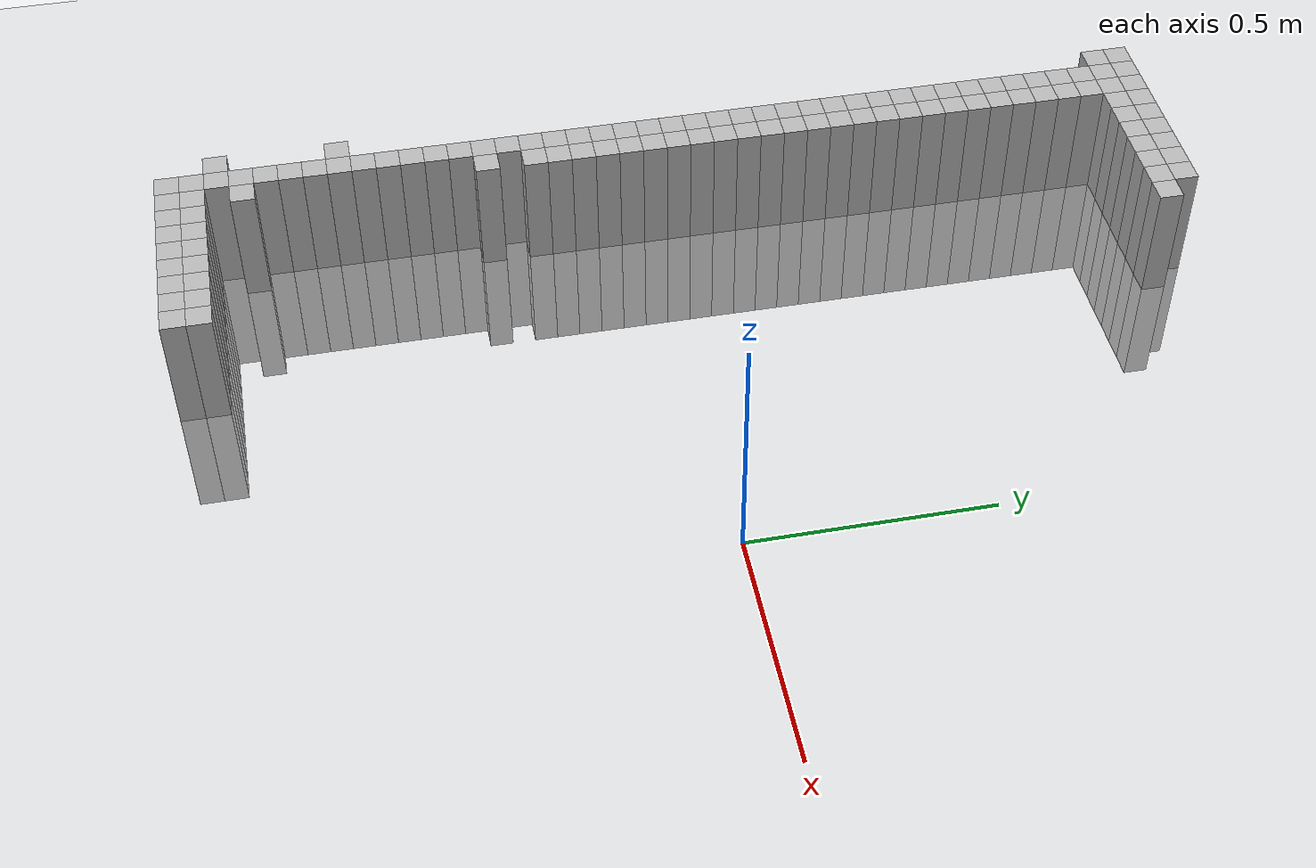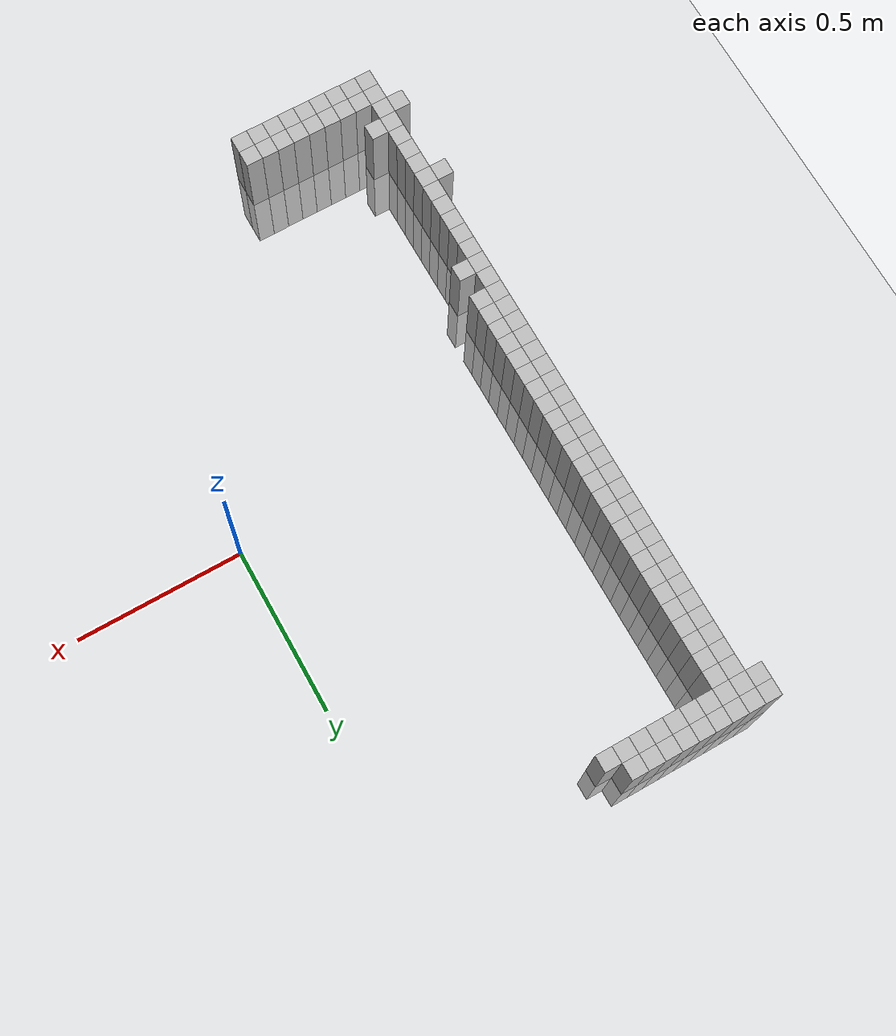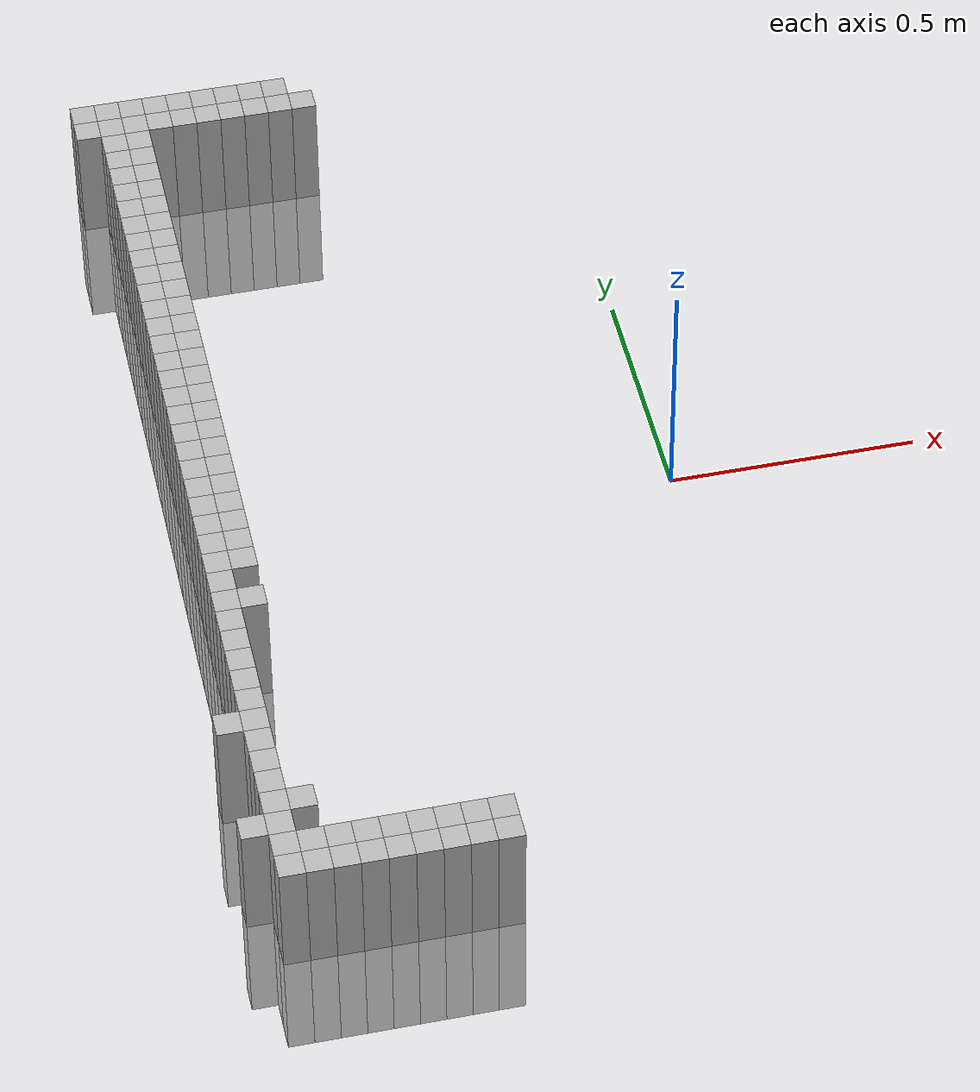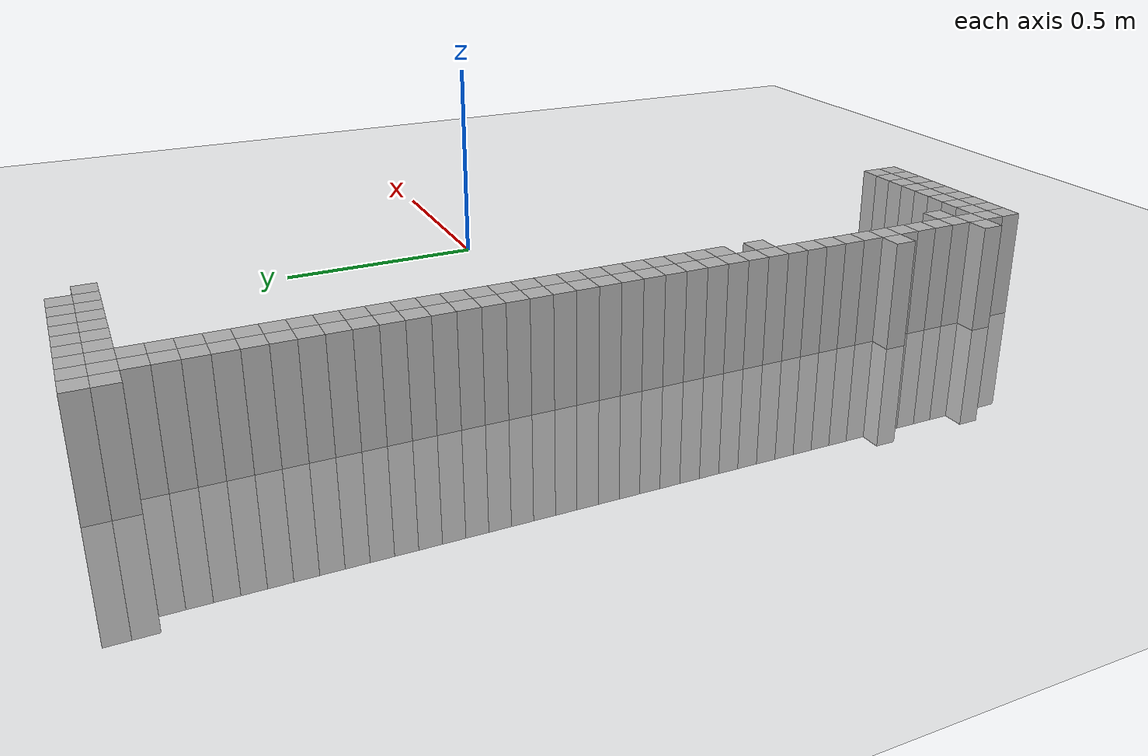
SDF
<sdf version="1.6">
 <world name="my_exploration_world">
  <include><uri>model://ground_plane</uri></include>
  <include><uri>model://sun</uri></include>
  <model name="obstacle_6">
   <pose>-0.9499998651444912 -0.9999998658895493 0 0 0 0</pose>
   <link name="link">
    <collision name="collision">
     <geometry><box><size>0.05000000074505806 0.05000000074505806 0.5</size></box></geometry>
    </collision>
    <visual name="visual">
     <geometry><box><size>0.05000000074505806 0.05000000074505806 0.5</size></box></geometry>
    </visual>
   </link>
   <static>true</static>
  </model>
  <model name="obstacle_7">
   <pose>-0.8999998643994331 -0.9999998658895493 0 0 0 0</pose>
   <link name="link">
    <collision name="collision">
     <geometry><box><size>0.05000000074505806 0.05000000074505806 0.5</size></box></geometry>
    </collision>
    <visual name="visual">
     <geometry><box><size>0.05000000074505806 0.05000000074505806 0.5</size></box></geometry>
    </visual>
   </link>
   <static>true</static>
  </model>
  <model name="obstacle_8">
   <pose>-0.8499998636543751 -0.9999998658895493 0 0 0 0</pose>
   <link name="link">
    <collision name="collision">
     <geometry><box><size>0.05000000074505806 0.05000000074505806 0.5</size></box></geometry>
    </collision>
    <visual name="visual">
     <geometry><box><size>0.05000000074505806 0.05000000074505806 0.5</size></box></geometry>
    </visual>
   </link>
   <static>true</static>
  </model>
  <model name="obstacle_9">
   <pose>-0.799999862909317 -0.9999998658895493 0 0 0 0</pose>
   <link name="link">
    <collision name="collision">
     <geometry><box><size>0.05000000074505806 0.05000000074505806 0.5</size></box></geometry>
    </collision>
    <visual name="visual">
     <geometry><box><size>0.05000000074505806 0.05000000074505806 0.5</size></box></geometry>
    </visual>
   </link>
   <static>true</static>
  </model>
  <model name="obstacle_10">
   <pose>-0.749999862164259 -0.9999998658895493 0 0 0 0</pose>
   <link name="link">
    <collision name="collision">
     <geometry><box><size>0.05000000074505806 0.05000000074505806 0.5</size></box></geometry>
    </collision>
    <visual name="visual">
     <geometry><box><size>0.05000000074505806 0.05000000074505806 0.5</size></box></geometry>
    </visual>
   </link>
   <static>true</static>
  </model>
  <model name="obstacle_11">
   <pose>-0.6999998614192009 -0.9999998658895493 0 0 0 0</pose>
   <link name="link">
    <collision name="collision">
     <geometry><box><size>0.05000000074505806 0.05000000074505806 0.5</size></box></geometry>
    </collision>
    <visual name="visual">
     <geometry><box><size>0.05000000074505806 0.05000000074505806 0.5</size></box></geometry>
    </visual>
   </link>
   <static>true</static>
  </model>
  <model name="obstacle_12">
   <pose>-0.6499998606741428 -0.9999998658895493 0 0 0 0</pose>
   <link name="link">
    <collision name="collision">
     <geometry><box><size>0.05000000074505806 0.05000000074505806 0.5</size></box></geometry>
    </collision>
    <visual name="visual">
     <geometry><box><size>0.05000000074505806 0.05000000074505806 0.5</size></box></geometry>
    </visual>
   </link>
   <static>true</static>
  </model>
  <model name="obstacle_13">
   <pose>-0.5999998599290848 -0.9999998658895493 0 0 0 0</pose>
   <link name="link">
    <collision name="collision">
     <geometry><box><size>0.05000000074505806 0.05000000074505806 0.5</size></box></geometry>
    </collision>
    <visual name="visual">
     <geometry><box><size>0.05000000074505806 0.05000000074505806 0.5</size></box></geometry>
    </visual>
   </link>
   <static>true</static>
  </model>
  <model name="obstacle_14">
   <pose>-0.5499998591840267 -0.9999998658895493 0 0 0 0</pose>
   <link name="link">
    <collision name="collision">
     <geometry><box><size>0.05000000074505806 0.05000000074505806 0.5</size></box></geometry>
    </collision>
    <visual name="visual">
     <geometry><box><size>0.05000000074505806 0.05000000074505806 0.5</size></box></geometry>
    </visual>
   </link>
   <static>true</static>
  </model>
  <model name="obstacle_85">
   <pose>-0.9499998651444912 -0.9499998651444912 0 0 0 0</pose>
   <link name="link">
    <collision name="collision">
     <geometry><box><size>0.05000000074505806 0.05000000074505806 0.5</size></box></geometry>
    </collision>
    <visual name="visual">
     <geometry><box><size>0.05000000074505806 0.05000000074505806 0.5</size></box></geometry>
    </visual>
   </link>
   <static>true</static>
  </model>
  <model name="obstacle_86">
   <pose>-0.8999998643994331 -0.9499998651444912 0 0 0 0</pose>
   <link name="link">
    <collision name="collision">
     <geometry><box><size>0.05000000074505806 0.05000000074505806 0.5</size></box></geometry>
    </collision>
    <visual name="visual">
     <geometry><box><size>0.05000000074505806 0.05000000074505806 0.5</size></box></geometry>
    </visual>
   </link>
   <static>true</static>
  </model>
  <model name="obstacle_87">
   <pose>-0.8499998636543751 -0.9499998651444912 0 0 0 0</pose>
   <link name="link">
    <collision name="collision">
     <geometry><box><size>0.05000000074505806 0.05000000074505806 0.5</size></box></geometry>
    </collision>
    <visual name="visual">
     <geometry><box><size>0.05000000074505806 0.05000000074505806 0.5</size></box></geometry>
    </visual>
   </link>
   <static>true</static>
  </model>
  <model name="obstacle_88">
   <pose>-0.799999862909317 -0.9499998651444912 0 0 0 0</pose>
   <link name="link">
    <collision name="collision">
     <geometry><box><size>0.05000000074505806 0.05000000074505806 0.5</size></box></geometry>
    </collision>
    <visual name="visual">
     <geometry><box><size>0.05000000074505806 0.05000000074505806 0.5</size></box></geometry>
    </visual>
   </link>
   <static>true</static>
  </model>
  <model name="obstacle_89">
   <pose>-0.749999862164259 -0.9499998651444912 0 0 0 0</pose>
   <link name="link">
    <collision name="collision">
     <geometry><box><size>0.05000000074505806 0.05000000074505806 0.5</size></box></geometry>
    </collision>
    <visual name="visual">
     <geometry><box><size>0.05000000074505806 0.05000000074505806 0.5</size></box></geometry>
    </visual>
   </link>
   <static>true</static>
  </model>
  <model name="obstacle_90">
   <pose>-0.6999998614192009 -0.9499998651444912 0 0 0 0</pose>
   <link name="link">
    <collision name="collision">
     <geometry><box><size>0.05000000074505806 0.05000000074505806 0.5</size></box></geometry>
    </collision>
    <visual name="visual">
     <geometry><box><size>0.05000000074505806 0.05000000074505806 0.5</size></box></geometry>
    </visual>
   </link>
   <static>true</static>
  </model>
  <model name="obstacle_91">
   <pose>-0.6499998606741428 -0.9499998651444912 0 0 0 0</pose>
   <link name="link">
    <collision name="collision">
     <geometry><box><size>0.05000000074505806 0.05000000074505806 0.5</size></box></geometry>
    </collision>
    <visual name="visual">
     <geometry><box><size>0.05000000074505806 0.05000000074505806 0.5</size></box></geometry>
    </visual>
   </link>
   <static>true</static>
  </model>
  <model name="obstacle_92">
   <pose>-0.5999998599290848 -0.9499998651444912 0 0 0 0</pose>
   <link name="link">
    <collision name="collision">
     <geometry><box><size>0.05000000074505806 0.05000000074505806 0.5</size></box></geometry>
    </collision>
    <visual name="visual">
     <geometry><box><size>0.05000000074505806 0.05000000074505806 0.5</size></box></geometry>
    </visual>
   </link>
   <static>true</static>
  </model>
  <model name="obstacle_93">
   <pose>-0.5499998591840267 -0.9499998651444912 0 0 0 0</pose>
   <link name="link">
    <collision name="collision">
     <geometry><box><size>0.05000000074505806 0.05000000074505806 0.5</size></box></geometry>
    </collision>
    <visual name="visual">
     <geometry><box><size>0.05000000074505806 0.05000000074505806 0.5</size></box></geometry>
    </visual>
   </link>
   <static>true</static>
  </model>
  <model name="obstacle_103">
   <pose>-0.9999998658895493 -0.8999998643994331 0 0 0 0</pose>
   <link name="link">
    <collision name="collision">
     <geometry><box><size>0.05000000074505806 0.05000000074505806 0.5</size></box></geometry>
    </collision>
    <visual name="visual">
     <geometry><box><size>0.05000000074505806 0.05000000074505806 0.5</size></box></geometry>
    </visual>
   </link>
   <static>true</static>
  </model>
  <model name="obstacle_104">
   <pose>-0.9499998651444912 -0.8999998643994331 0 0 0 0</pose>
   <link name="link">
    <collision name="collision">
     <geometry><box><size>0.05000000074505806 0.05000000074505806 0.5</size></box></geometry>
    </collision>
    <visual name="visual">
     <geometry><box><size>0.05000000074505806 0.05000000074505806 0.5</size></box></geometry>
    </visual>
   </link>
   <static>true</static>
  </model>
  <model name="obstacle_105">
   <pose>-0.9499998651444912 -0.8499998636543751 0 0 0 0</pose>
   <link name="link">
    <collision name="collision">
     <geometry><box><size>0.05000000074505806 0.05000000074505806 0.5</size></box></geometry>
    </collision>
    <visual name="visual">
     <geometry><box><size>0.05000000074505806 0.05000000074505806 0.5</size></box></geometry>
    </visual>
   </link>
   <static>true</static>
  </model>
  <model name="obstacle_106">
   <pose>-0.8999998643994331 -0.8499998636543751 0 0 0 0</pose>
   <link name="link">
    <collision name="collision">
     <geometry><box><size>0.05000000074505806 0.05000000074505806 0.5</size></box></geometry>
    </collision>
    <visual name="visual">
     <geometry><box><size>0.05000000074505806 0.05000000074505806 0.5</size></box></geometry>
    </visual>
   </link>
   <static>true</static>
  </model>
  <model name="obstacle_107">
   <pose>-0.9499998651444912 -0.799999862909317 0 0 0 0</pose>
   <link name="link">
    <collision name="collision">
     <geometry><box><size>0.05000000074505806 0.05000000074505806 0.5</size></box></geometry>
    </collision>
    <visual name="visual">
     <geometry><box><size>0.05000000074505806 0.05000000074505806 0.5</size></box></geometry>
    </visual>
   </link>
   <static>true</static>
  </model>
  <model name="obstacle_108">
   <pose>-0.9499998651444912 -0.749999862164259 0 0 0 0</pose>
   <link name="link">
    <collision name="collision">
     <geometry><box><size>0.05000000074505806 0.05000000074505806 0.5</size></box></geometry>
    </collision>
    <visual name="visual">
     <geometry><box><size>0.05000000074505806 0.05000000074505806 0.5</size></box></geometry>
    </visual>
   </link>
   <static>true</static>
  </model>
  <model name="obstacle_109">
   <pose>-0.9499998651444912 -0.6999998614192009 0 0 0 0</pose>
   <link name="link">
    <collision name="collision">
     <geometry><box><size>0.05000000074505806 0.05000000074505806 0.5</size></box></geometry>
    </collision>
    <visual name="visual">
     <geometry><box><size>0.05000000074505806 0.05000000074505806 0.5</size></box></geometry>
    </visual>
   </link>
   <static>true</static>
  </model>
  <model name="obstacle_110">
   <pose>-0.9999998658895493 -0.6499998606741428 0 0 0 0</pose>
   <link name="link">
    <collision name="collision">
     <geometry><box><size>0.05000000074505806 0.05000000074505806 0.5</size></box></geometry>
    </collision>
    <visual name="visual">
     <geometry><box><size>0.05000000074505806 0.05000000074505806 0.5</size></box></geometry>
    </visual>
   </link>
   <static>true</static>
  </model>
  <model name="obstacle_111">
   <pose>-0.9499998651444912 -0.6499998606741428 0 0 0 0</pose>
   <link name="link">
    <collision name="collision">
     <geometry><box><size>0.05000000074505806 0.05000000074505806 0.5</size></box></geometry>
    </collision>
    <visual name="visual">
     <geometry><box><size>0.05000000074505806 0.05000000074505806 0.5</size></box></geometry>
    </visual>
   </link>
   <static>true</static>
  </model>
  <model name="obstacle_112">
   <pose>-0.9499998651444912 -0.5999998599290848 0 0 0 0</pose>
   <link name="link">
    <collision name="collision">
     <geometry><box><size>0.05000000074505806 0.05000000074505806 0.5</size></box></geometry>
    </collision>
    <visual name="visual">
     <geometry><box><size>0.05000000074505806 0.05000000074505806 0.5</size></box></geometry>
    </visual>
   </link>
   <static>true</static>
  </model>
  <model name="obstacle_113">
   <pose>-0.9499998651444912 -0.5499998591840267 0 0 0 0</pose>
   <link name="link">
    <collision name="collision">
     <geometry><box><size>0.05000000074505806 0.05000000074505806 0.5</size></box></geometry>
    </collision>
    <visual name="visual">
     <geometry><box><size>0.05000000074505806 0.05000000074505806 0.5</size></box></geometry>
    </visual>
   </link>
   <static>true</static>
  </model>
  <model name="obstacle_114">
   <pose>-0.9499998651444912 -0.49999985843896866 0 0 0 0</pose>
   <link name="link">
    <collision name="collision">
     <geometry><box><size>0.05000000074505806 0.05000000074505806 0.5</size></box></geometry>
    </collision>
    <visual name="visual">
     <geometry><box><size>0.05000000074505806 0.05000000074505806 0.5</size></box></geometry>
    </visual>
   </link>
   <static>true</static>
  </model>
  <model name="obstacle_115">
   <pose>-0.9499998651444912 -0.4499998576939106 0 0 0 0</pose>
   <link name="link">
    <collision name="collision">
     <geometry><box><size>0.05000000074505806 0.05000000074505806 0.5</size></box></geometry>
    </collision>
    <visual name="visual">
     <geometry><box><size>0.05000000074505806 0.05000000074505806 0.5</size></box></geometry>
    </visual>
   </link>
   <static>true</static>
  </model>
  <model name="obstacle_116">
   <pose>-0.9499998651444912 -0.39999985694885254 0 0 0 0</pose>
   <link name="link">
    <collision name="collision">
     <geometry><box><size>0.05000000074505806 0.05000000074505806 0.5</size></box></geometry>
    </collision>
    <visual name="visual">
     <geometry><box><size>0.05000000074505806 0.05000000074505806 0.5</size></box></geometry>
    </visual>
   </link>
   <static>true</static>
  </model>
  <model name="obstacle_117">
   <pose>-0.9499998651444912 -0.3499998562037945 0 0 0 0</pose>
   <link name="link">
    <collision name="collision">
     <geometry><box><size>0.05000000074505806 0.05000000074505806 0.5</size></box></geometry>
    </collision>
    <visual name="visual">
     <geometry><box><size>0.05000000074505806 0.05000000074505806 0.5</size></box></geometry>
    </visual>
   </link>
   <static>true</static>
  </model>
  <model name="obstacle_118">
   <pose>-0.8999998643994331 -0.3499998562037945 0 0 0 0</pose>
   <link name="link">
    <collision name="collision">
     <geometry><box><size>0.05000000074505806 0.05000000074505806 0.5</size></box></geometry>
    </collision>
    <visual name="visual">
     <geometry><box><size>0.05000000074505806 0.05000000074505806 0.5</size></box></geometry>
    </visual>
   </link>
   <static>true</static>
  </model>
  <model name="obstacle_119">
   <pose>-0.9499998651444912 -0.2999998554587364 0 0 0 0</pose>
   <link name="link">
    <collision name="collision">
     <geometry><box><size>0.05000000074505806 0.05000000074505806 0.5</size></box></geometry>
    </collision>
    <visual name="visual">
     <geometry><box><size>0.05000000074505806 0.05000000074505806 0.5</size></box></geometry>
    </visual>
   </link>
   <static>true</static>
  </model>
  <model name="obstacle_120">
   <pose>-0.9499998651444912 -0.24999985471367836 0 0 0 0</pose>
   <link name="link">
    <collision name="collision">
     <geometry><box><size>0.05000000074505806 0.05000000074505806 0.5</size></box></geometry>
    </collision>
    <visual name="visual">
     <geometry><box><size>0.05000000074505806 0.05000000074505806 0.5</size></box></geometry>
    </visual>
   </link>
   <static>true</static>
  </model>
  <model name="obstacle_121">
   <pose>-0.8999998643994331 -0.24999985471367836 0 0 0 0</pose>
   <link name="link">
    <collision name="collision">
     <geometry><box><size>0.05000000074505806 0.05000000074505806 0.5</size></box></geometry>
    </collision>
    <visual name="visual">
     <geometry><box><size>0.05000000074505806 0.05000000074505806 0.5</size></box></geometry>
    </visual>
   </link>
   <static>true</static>
  </model>
  <model name="obstacle_122">
   <pose>-0.9499998651444912 -0.1999998539686203 0 0 0 0</pose>
   <link name="link">
    <collision name="collision">
     <geometry><box><size>0.05000000074505806 0.05000000074505806 0.5</size></box></geometry>
    </collision>
    <visual name="visual">
     <geometry><box><size>0.05000000074505806 0.05000000074505806 0.5</size></box></geometry>
    </visual>
   </link>
   <static>true</static>
  </model>
  <model name="obstacle_123">
   <pose>-0.8999998643994331 -0.1999998539686203 0 0 0 0</pose>
   <link name="link">
    <collision name="collision">
     <geometry><box><size>0.05000000074505806 0.05000000074505806 0.5</size></box></geometry>
    </collision>
    <visual name="visual">
     <geometry><box><size>0.05000000074505806 0.05000000074505806 0.5</size></box></geometry>
    </visual>
   </link>
   <static>true</static>
  </model>
  <model name="obstacle_124">
   <pose>-0.9499998651444912 -0.14999985322356224 0 0 0 0</pose>
   <link name="link">
    <collision name="collision">
     <geometry><box><size>0.05000000074505806 0.05000000074505806 0.5</size></box></geometry>
    </collision>
    <visual name="visual">
     <geometry><box><size>0.05000000074505806 0.05000000074505806 0.5</size></box></geometry>
    </visual>
   </link>
   <static>true</static>
  </model>
  <model name="obstacle_125">
   <pose>-0.8999998643994331 -0.14999985322356224 0 0 0 0</pose>
   <link name="link">
    <collision name="collision">
     <geometry><box><size>0.05000000074505806 0.05000000074505806 0.5</size></box></geometry>
    </collision>
    <visual name="visual">
     <geometry><box><size>0.05000000074505806 0.05000000074505806 0.5</size></box></geometry>
    </visual>
   </link>
   <static>true</static>
  </model>
  <model name="obstacle_126">
   <pose>-0.9499998651444912 -0.09999985247850418 0 0 0 0</pose>
   <link name="link">
    <collision name="collision">
     <geometry><box><size>0.05000000074505806 0.05000000074505806 0.5</size></box></geometry>
    </collision>
    <visual name="visual">
     <geometry><box><size>0.05000000074505806 0.05000000074505806 0.5</size></box></geometry>
    </visual>
   </link>
   <static>true</static>
  </model>
  <model name="obstacle_127">
   <pose>-0.8999998643994331 -0.09999985247850418 0 0 0 0</pose>
   <link name="link">
    <collision name="collision">
     <geometry><box><size>0.05000000074505806 0.05000000074505806 0.5</size></box></geometry>
    </collision>
    <visual name="visual">
     <geometry><box><size>0.05000000074505806 0.05000000074505806 0.5</size></box></geometry>
    </visual>
   </link>
   <static>true</static>
  </model>
  <model name="obstacle_130">
   <pose>-0.9499998651444912 -0.04999985173344612 0 0 0 0</pose>
   <link name="link">
    <collision name="collision">
     <geometry><box><size>0.05000000074505806 0.05000000074505806 0.5</size></box></geometry>
    </collision>
    <visual name="visual">
     <geometry><box><size>0.05000000074505806 0.05000000074505806 0.5</size></box></geometry>
    </visual>
   </link>
   <static>true</static>
  </model>
  <model name="obstacle_131">
   <pose>-0.8999998643994331 -0.04999985173344612 0 0 0 0</pose>
   <link name="link">
    <collision name="collision">
     <geometry><box><size>0.05000000074505806 0.05000000074505806 0.5</size></box></geometry>
    </collision>
    <visual name="visual">
     <geometry><box><size>0.05000000074505806 0.05000000074505806 0.5</size></box></geometry>
    </visual>
   </link>
   <static>true</static>
  </model>
  <model name="obstacle_152">
   <pose>-0.9499998651444912 1.4901161193847656e-07 0 0 0 0</pose>
   <link name="link">
    <collision name="collision">
     <geometry><box><size>0.05000000074505806 0.05000000074505806 0.5</size></box></geometry>
    </collision>
    <visual name="visual">
     <geometry><box><size>0.05000000074505806 0.05000000074505806 0.5</size></box></geometry>
    </visual>
   </link>
   <static>true</static>
  </model>
  <model name="obstacle_153">
   <pose>-0.8999998643994331 1.4901161193847656e-07 0 0 0 0</pose>
   <link name="link">
    <collision name="collision">
     <geometry><box><size>0.05000000074505806 0.05000000074505806 0.5</size></box></geometry>
    </collision>
    <visual name="visual">
     <geometry><box><size>0.05000000074505806 0.05000000074505806 0.5</size></box></geometry>
    </visual>
   </link>
   <static>true</static>
  </model>
  <model name="obstacle_164">
   <pose>-0.9499998651444912 0.05000014975667 0 0 0 0</pose>
   <link name="link">
    <collision name="collision">
     <geometry><box><size>0.05000000074505806 0.05000000074505806 0.5</size></box></geometry>
    </collision>
    <visual name="visual">
     <geometry><box><size>0.05000000074505806 0.05000000074505806 0.5</size></box></geometry>
    </visual>
   </link>
   <static>true</static>
  </model>
  <model name="obstacle_165">
   <pose>-0.8999998643994331 0.05000014975667 0 0 0 0</pose>
   <link name="link">
    <collision name="collision">
     <geometry><box><size>0.05000000074505806 0.05000000074505806 0.5</size></box></geometry>
    </collision>
    <visual name="visual">
     <geometry><box><size>0.05000000074505806 0.05000000074505806 0.5</size></box></geometry>
    </visual>
   </link>
   <static>true</static>
  </model>
  <model name="obstacle_167">
   <pose>-0.9499998651444912 0.10000015050172806 0 0 0 0</pose>
   <link name="link">
    <collision name="collision">
     <geometry><box><size>0.05000000074505806 0.05000000074505806 0.5</size></box></geometry>
    </collision>
    <visual name="visual">
     <geometry><box><size>0.05000000074505806 0.05000000074505806 0.5</size></box></geometry>
    </visual>
   </link>
   <static>true</static>
  </model>
  <model name="obstacle_168">
   <pose>-0.8999998643994331 0.10000015050172806 0 0 0 0</pose>
   <link name="link">
    <collision name="collision">
     <geometry><box><size>0.05000000074505806 0.05000000074505806 0.5</size></box></geometry>
    </collision>
    <visual name="visual">
     <geometry><box><size>0.05000000074505806 0.05000000074505806 0.5</size></box></geometry>
    </visual>
   </link>
   <static>true</static>
  </model>
  <model name="obstacle_170">
   <pose>-0.9499998651444912 0.15000015124678612 0 0 0 0</pose>
   <link name="link">
    <collision name="collision">
     <geometry><box><size>0.05000000074505806 0.05000000074505806 0.5</size></box></geometry>
    </collision>
    <visual name="visual">
     <geometry><box><size>0.05000000074505806 0.05000000074505806 0.5</size></box></geometry>
    </visual>
   </link>
   <static>true</static>
  </model>
  <model name="obstacle_171">
   <pose>-0.8999998643994331 0.15000015124678612 0 0 0 0</pose>
   <link name="link">
    <collision name="collision">
     <geometry><box><size>0.05000000074505806 0.05000000074505806 0.5</size></box></geometry>
    </collision>
    <visual name="visual">
     <geometry><box><size>0.05000000074505806 0.05000000074505806 0.5</size></box></geometry>
    </visual>
   </link>
   <static>true</static>
  </model>
  <model name="obstacle_173">
   <pose>-0.9499998651444912 0.20000015199184418 0 0 0 0</pose>
   <link name="link">
    <collision name="collision">
     <geometry><box><size>0.05000000074505806 0.05000000074505806 0.5</size></box></geometry>
    </collision>
    <visual name="visual">
     <geometry><box><size>0.05000000074505806 0.05000000074505806 0.5</size></box></geometry>
    </visual>
   </link>
   <static>true</static>
  </model>
  <model name="obstacle_174">
   <pose>-0.8999998643994331 0.20000015199184418 0 0 0 0</pose>
   <link name="link">
    <collision name="collision">
     <geometry><box><size>0.05000000074505806 0.05000000074505806 0.5</size></box></geometry>
    </collision>
    <visual name="visual">
     <geometry><box><size>0.05000000074505806 0.05000000074505806 0.5</size></box></geometry>
    </visual>
   </link>
   <static>true</static>
  </model>
  <model name="obstacle_176">
   <pose>-0.9499998651444912 0.25000015273690224 0 0 0 0</pose>
   <link name="link">
    <collision name="collision">
     <geometry><box><size>0.05000000074505806 0.05000000074505806 0.5</size></box></geometry>
    </collision>
    <visual name="visual">
     <geometry><box><size>0.05000000074505806 0.05000000074505806 0.5</size></box></geometry>
    </visual>
   </link>
   <static>true</static>
  </model>
  <model name="obstacle_177">
   <pose>-0.8999998643994331 0.25000015273690224 0 0 0 0</pose>
   <link name="link">
    <collision name="collision">
     <geometry><box><size>0.05000000074505806 0.05000000074505806 0.5</size></box></geometry>
    </collision>
    <visual name="visual">
     <geometry><box><size>0.05000000074505806 0.05000000074505806 0.5</size></box></geometry>
    </visual>
   </link>
   <static>true</static>
  </model>
  <model name="obstacle_179">
   <pose>-0.9499998651444912 0.3000001534819603 0 0 0 0</pose>
   <link name="link">
    <collision name="collision">
     <geometry><box><size>0.05000000074505806 0.05000000074505806 0.5</size></box></geometry>
    </collision>
    <visual name="visual">
     <geometry><box><size>0.05000000074505806 0.05000000074505806 0.5</size></box></geometry>
    </visual>
   </link>
   <static>true</static>
  </model>
  <model name="obstacle_180">
   <pose>-0.8999998643994331 0.3000001534819603 0 0 0 0</pose>
   <link name="link">
    <collision name="collision">
     <geometry><box><size>0.05000000074505806 0.05000000074505806 0.5</size></box></geometry>
    </collision>
    <visual name="visual">
     <geometry><box><size>0.05000000074505806 0.05000000074505806 0.5</size></box></geometry>
    </visual>
   </link>
   <static>true</static>
  </model>
  <model name="obstacle_182">
   <pose>-0.9499998651444912 0.35000015422701836 0 0 0 0</pose>
   <link name="link">
    <collision name="collision">
     <geometry><box><size>0.05000000074505806 0.05000000074505806 0.5</size></box></geometry>
    </collision>
    <visual name="visual">
     <geometry><box><size>0.05000000074505806 0.05000000074505806 0.5</size></box></geometry>
    </visual>
   </link>
   <static>true</static>
  </model>
  <model name="obstacle_183">
   <pose>-0.8999998643994331 0.35000015422701836 0 0 0 0</pose>
   <link name="link">
    <collision name="collision">
     <geometry><box><size>0.05000000074505806 0.05000000074505806 0.5</size></box></geometry>
    </collision>
    <visual name="visual">
     <geometry><box><size>0.05000000074505806 0.05000000074505806 0.5</size></box></geometry>
    </visual>
   </link>
   <static>true</static>
  </model>
  <model name="obstacle_185">
   <pose>-0.9499998651444912 0.4000001549720764 0 0 0 0</pose>
   <link name="link">
    <collision name="collision">
     <geometry><box><size>0.05000000074505806 0.05000000074505806 0.5</size></box></geometry>
    </collision>
    <visual name="visual">
     <geometry><box><size>0.05000000074505806 0.05000000074505806 0.5</size></box></geometry>
    </visual>
   </link>
   <static>true</static>
  </model>
  <model name="obstacle_186">
   <pose>-0.8999998643994331 0.4000001549720764 0 0 0 0</pose>
   <link name="link">
    <collision name="collision">
     <geometry><box><size>0.05000000074505806 0.05000000074505806 0.5</size></box></geometry>
    </collision>
    <visual name="visual">
     <geometry><box><size>0.05000000074505806 0.05000000074505806 0.5</size></box></geometry>
    </visual>
   </link>
   <static>true</static>
  </model>
  <model name="obstacle_189">
   <pose>-0.9499998651444912 0.4500001557171345 0 0 0 0</pose>
   <link name="link">
    <collision name="collision">
     <geometry><box><size>0.05000000074505806 0.05000000074505806 0.5</size></box></geometry>
    </collision>
    <visual name="visual">
     <geometry><box><size>0.05000000074505806 0.05000000074505806 0.5</size></box></geometry>
    </visual>
   </link>
   <static>true</static>
  </model>
  <model name="obstacle_190">
   <pose>-0.8999998643994331 0.4500001557171345 0 0 0 0</pose>
   <link name="link">
    <collision name="collision">
     <geometry><box><size>0.05000000074505806 0.05000000074505806 0.5</size></box></geometry>
    </collision>
    <visual name="visual">
     <geometry><box><size>0.05000000074505806 0.05000000074505806 0.5</size></box></geometry>
    </visual>
   </link>
   <static>true</static>
  </model>
  <model name="obstacle_193">
   <pose>-0.9499998651444912 0.5000001564621925 0 0 0 0</pose>
   <link name="link">
    <collision name="collision">
     <geometry><box><size>0.05000000074505806 0.05000000074505806 0.5</size></box></geometry>
    </collision>
    <visual name="visual">
     <geometry><box><size>0.05000000074505806 0.05000000074505806 0.5</size></box></geometry>
    </visual>
   </link>
   <static>true</static>
  </model>
  <model name="obstacle_194">
   <pose>-0.8999998643994331 0.5000001564621925 0 0 0 0</pose>
   <link name="link">
    <collision name="collision">
     <geometry><box><size>0.05000000074505806 0.05000000074505806 0.5</size></box></geometry>
    </collision>
    <visual name="visual">
     <geometry><box><size>0.05000000074505806 0.05000000074505806 0.5</size></box></geometry>
    </visual>
   </link>
   <static>true</static>
  </model>
  <model name="obstacle_197">
   <pose>-0.9499998651444912 0.5500001572072506 0 0 0 0</pose>
   <link name="link">
    <collision name="collision">
     <geometry><box><size>0.05000000074505806 0.05000000074505806 0.5</size></box></geometry>
    </collision>
    <visual name="visual">
     <geometry><box><size>0.05000000074505806 0.05000000074505806 0.5</size></box></geometry>
    </visual>
   </link>
   <static>true</static>
  </model>
  <model name="obstacle_198">
   <pose>-0.8999998643994331 0.5500001572072506 0 0 0 0</pose>
   <link name="link">
    <collision name="collision">
     <geometry><box><size>0.05000000074505806 0.05000000074505806 0.5</size></box></geometry>
    </collision>
    <visual name="visual">
     <geometry><box><size>0.05000000074505806 0.05000000074505806 0.5</size></box></geometry>
    </visual>
   </link>
   <static>true</static>
  </model>
  <model name="obstacle_201">
   <pose>-0.9499998651444912 0.6000001579523087 0 0 0 0</pose>
   <link name="link">
    <collision name="collision">
     <geometry><box><size>0.05000000074505806 0.05000000074505806 0.5</size></box></geometry>
    </collision>
    <visual name="visual">
     <geometry><box><size>0.05000000074505806 0.05000000074505806 0.5</size></box></geometry>
    </visual>
   </link>
   <static>true</static>
  </model>
  <model name="obstacle_202">
   <pose>-0.8999998643994331 0.6000001579523087 0 0 0 0</pose>
   <link name="link">
    <collision name="collision">
     <geometry><box><size>0.05000000074505806 0.05000000074505806 0.5</size></box></geometry>
    </collision>
    <visual name="visual">
     <geometry><box><size>0.05000000074505806 0.05000000074505806 0.5</size></box></geometry>
    </visual>
   </link>
   <static>true</static>
  </model>
  <model name="obstacle_205">
   <pose>-0.9499998651444912 0.6500001586973667 0 0 0 0</pose>
   <link name="link">
    <collision name="collision">
     <geometry><box><size>0.05000000074505806 0.05000000074505806 0.5</size></box></geometry>
    </collision>
    <visual name="visual">
     <geometry><box><size>0.05000000074505806 0.05000000074505806 0.5</size></box></geometry>
    </visual>
   </link>
   <static>true</static>
  </model>
  <model name="obstacle_206">
   <pose>-0.8999998643994331 0.6500001586973667 0 0 0 0</pose>
   <link name="link">
    <collision name="collision">
     <geometry><box><size>0.05000000074505806 0.05000000074505806 0.5</size></box></geometry>
    </collision>
    <visual name="visual">
     <geometry><box><size>0.05000000074505806 0.05000000074505806 0.5</size></box></geometry>
    </visual>
   </link>
   <static>true</static>
  </model>
  <model name="obstacle_209">
   <pose>-0.9499998651444912 0.7000001594424248 0 0 0 0</pose>
   <link name="link">
    <collision name="collision">
     <geometry><box><size>0.05000000074505806 0.05000000074505806 0.5</size></box></geometry>
    </collision>
    <visual name="visual">
     <geometry><box><size>0.05000000074505806 0.05000000074505806 0.5</size></box></geometry>
    </visual>
   </link>
   <static>true</static>
  </model>
  <model name="obstacle_210">
   <pose>-0.8999998643994331 0.7000001594424248 0 0 0 0</pose>
   <link name="link">
    <collision name="collision">
     <geometry><box><size>0.05000000074505806 0.05000000074505806 0.5</size></box></geometry>
    </collision>
    <visual name="visual">
     <geometry><box><size>0.05000000074505806 0.05000000074505806 0.5</size></box></geometry>
    </visual>
   </link>
   <static>true</static>
  </model>
  <model name="obstacle_213">
   <pose>-0.9499998651444912 0.7500001601874828 0 0 0 0</pose>
   <link name="link">
    <collision name="collision">
     <geometry><box><size>0.05000000074505806 0.05000000074505806 0.5</size></box></geometry>
    </collision>
    <visual name="visual">
     <geometry><box><size>0.05000000074505806 0.05000000074505806 0.5</size></box></geometry>
    </visual>
   </link>
   <static>true</static>
  </model>
  <model name="obstacle_214">
   <pose>-0.8999998643994331 0.7500001601874828 0 0 0 0</pose>
   <link name="link">
    <collision name="collision">
     <geometry><box><size>0.05000000074505806 0.05000000074505806 0.5</size></box></geometry>
    </collision>
    <visual name="visual">
     <geometry><box><size>0.05000000074505806 0.05000000074505806 0.5</size></box></geometry>
    </visual>
   </link>
   <static>true</static>
  </model>
  <model name="obstacle_217">
   <pose>-0.9499998651444912 0.8000001609325409 0 0 0 0</pose>
   <link name="link">
    <collision name="collision">
     <geometry><box><size>0.05000000074505806 0.05000000074505806 0.5</size></box></geometry>
    </collision>
    <visual name="visual">
     <geometry><box><size>0.05000000074505806 0.05000000074505806 0.5</size></box></geometry>
    </visual>
   </link>
   <static>true</static>
  </model>
  <model name="obstacle_218">
   <pose>-0.8999998643994331 0.8000001609325409 0 0 0 0</pose>
   <link name="link">
    <collision name="collision">
     <geometry><box><size>0.05000000074505806 0.05000000074505806 0.5</size></box></geometry>
    </collision>
    <visual name="visual">
     <geometry><box><size>0.05000000074505806 0.05000000074505806 0.5</size></box></geometry>
    </visual>
   </link>
   <static>true</static>
  </model>
  <model name="obstacle_221">
   <pose>-0.9499998651444912 0.850000161677599 0 0 0 0</pose>
   <link name="link">
    <collision name="collision">
     <geometry><box><size>0.05000000074505806 0.05000000074505806 0.5</size></box></geometry>
    </collision>
    <visual name="visual">
     <geometry><box><size>0.05000000074505806 0.05000000074505806 0.5</size></box></geometry>
    </visual>
   </link>
   <static>true</static>
  </model>
  <model name="obstacle_222">
   <pose>-0.8999998643994331 0.850000161677599 0 0 0 0</pose>
   <link name="link">
    <collision name="collision">
     <geometry><box><size>0.05000000074505806 0.05000000074505806 0.5</size></box></geometry>
    </collision>
    <visual name="visual">
     <geometry><box><size>0.05000000074505806 0.05000000074505806 0.5</size></box></geometry>
    </visual>
   </link>
   <static>true</static>
  </model>
  <model name="obstacle_225">
   <pose>-0.9499998651444912 0.900000162422657 0 0 0 0</pose>
   <link name="link">
    <collision name="collision">
     <geometry><box><size>0.05000000074505806 0.05000000074505806 0.5</size></box></geometry>
    </collision>
    <visual name="visual">
     <geometry><box><size>0.05000000074505806 0.05000000074505806 0.5</size></box></geometry>
    </visual>
   </link>
   <static>true</static>
  </model>
  <model name="obstacle_226">
   <pose>-0.8999998643994331 0.900000162422657 0 0 0 0</pose>
   <link name="link">
    <collision name="collision">
     <geometry><box><size>0.05000000074505806 0.05000000074505806 0.5</size></box></geometry>
    </collision>
    <visual name="visual">
     <geometry><box><size>0.05000000074505806 0.05000000074505806 0.5</size></box></geometry>
    </visual>
   </link>
   <static>true</static>
  </model>
  <model name="obstacle_229">
   <pose>-0.9499998651444912 0.9500001631677151 0 0 0 0</pose>
   <link name="link">
    <collision name="collision">
     <geometry><box><size>0.05000000074505806 0.05000000074505806 0.5</size></box></geometry>
    </collision>
    <visual name="visual">
     <geometry><box><size>0.05000000074505806 0.05000000074505806 0.5</size></box></geometry>
    </visual>
   </link>
   <static>true</static>
  </model>
  <model name="obstacle_230">
   <pose>-0.8999998643994331 0.9500001631677151 0 0 0 0</pose>
   <link name="link">
    <collision name="collision">
     <geometry><box><size>0.05000000074505806 0.05000000074505806 0.5</size></box></geometry>
    </collision>
    <visual name="visual">
     <geometry><box><size>0.05000000074505806 0.05000000074505806 0.5</size></box></geometry>
    </visual>
   </link>
   <static>true</static>
  </model>
  <model name="obstacle_249">
   <pose>-0.9999998658895493 1.0000001639127731 0 0 0 0</pose>
   <link name="link">
    <collision name="collision">
     <geometry><box><size>0.05000000074505806 0.05000000074505806 0.5</size></box></geometry>
    </collision>
    <visual name="visual">
     <geometry><box><size>0.05000000074505806 0.05000000074505806 0.5</size></box></geometry>
    </visual>
   </link>
   <static>true</static>
  </model>
  <model name="obstacle_250">
   <pose>-0.9499998651444912 1.0000001639127731 0 0 0 0</pose>
   <link name="link">
    <collision name="collision">
     <geometry><box><size>0.05000000074505806 0.05000000074505806 0.5</size></box></geometry>
    </collision>
    <visual name="visual">
     <geometry><box><size>0.05000000074505806 0.05000000074505806 0.5</size></box></geometry>
    </visual>
   </link>
   <static>true</static>
  </model>
  <model name="obstacle_251">
   <pose>-0.8999998643994331 1.0000001639127731 0 0 0 0</pose>
   <link name="link">
    <collision name="collision">
     <geometry><box><size>0.05000000074505806 0.05000000074505806 0.5</size></box></geometry>
    </collision>
    <visual name="visual">
     <geometry><box><size>0.05000000074505806 0.05000000074505806 0.5</size></box></geometry>
    </visual>
   </link>
   <static>true</static>
  </model>
  <model name="obstacle_252">
   <pose>-0.8499998636543751 1.0000001639127731 0 0 0 0</pose>
   <link name="link">
    <collision name="collision">
     <geometry><box><size>0.05000000074505806 0.05000000074505806 0.5</size></box></geometry>
    </collision>
    <visual name="visual">
     <geometry><box><size>0.05000000074505806 0.05000000074505806 0.5</size></box></geometry>
    </visual>
   </link>
   <static>true</static>
  </model>
  <model name="obstacle_253">
   <pose>-0.799999862909317 1.0000001639127731 0 0 0 0</pose>
   <link name="link">
    <collision name="collision">
     <geometry><box><size>0.05000000074505806 0.05000000074505806 0.5</size></box></geometry>
    </collision>
    <visual name="visual">
     <geometry><box><size>0.05000000074505806 0.05000000074505806 0.5</size></box></geometry>
    </visual>
   </link>
   <static>true</static>
  </model>
  <model name="obstacle_254">
   <pose>-0.749999862164259 1.0000001639127731 0 0 0 0</pose>
   <link name="link">
    <collision name="collision">
     <geometry><box><size>0.05000000074505806 0.05000000074505806 0.5</size></box></geometry>
    </collision>
    <visual name="visual">
     <geometry><box><size>0.05000000074505806 0.05000000074505806 0.5</size></box></geometry>
    </visual>
   </link>
   <static>true</static>
  </model>
  <model name="obstacle_255">
   <pose>-0.6999998614192009 1.0000001639127731 0 0 0 0</pose>
   <link name="link">
    <collision name="collision">
     <geometry><box><size>0.05000000074505806 0.05000000074505806 0.5</size></box></geometry>
    </collision>
    <visual name="visual">
     <geometry><box><size>0.05000000074505806 0.05000000074505806 0.5</size></box></geometry>
    </visual>
   </link>
   <static>true</static>
  </model>
  <model name="obstacle_256">
   <pose>-0.6499998606741428 1.0000001639127731 0 0 0 0</pose>
   <link name="link">
    <collision name="collision">
     <geometry><box><size>0.05000000074505806 0.05000000074505806 0.5</size></box></geometry>
    </collision>
    <visual name="visual">
     <geometry><box><size>0.05000000074505806 0.05000000074505806 0.5</size></box></geometry>
    </visual>
   </link>
   <static>true</static>
  </model>
  <model name="obstacle_257">
   <pose>-0.5999998599290848 1.0000001639127731 0 0 0 0</pose>
   <link name="link">
    <collision name="collision">
     <geometry><box><size>0.05000000074505806 0.05000000074505806 0.5</size></box></geometry>
    </collision>
    <visual name="visual">
     <geometry><box><size>0.05000000074505806 0.05000000074505806 0.5</size></box></geometry>
    </visual>
   </link>
   <static>true</static>
  </model>
  <model name="obstacle_258">
   <pose>-0.5499998591840267 1.0000001639127731 0 0 0 0</pose>
   <link name="link">
    <collision name="collision">
     <geometry><box><size>0.05000000074505806 0.05000000074505806 0.5</size></box></geometry>
    </collision>
    <visual name="visual">
     <geometry><box><size>0.05000000074505806 0.05000000074505806 0.5</size></box></geometry>
    </visual>
   </link>
   <static>true</static>
  </model>
  <model name="obstacle_295">
   <pose>-0.9999998658895493 1.0500001646578312 0 0 0 0</pose>
   <link name="link">
    <collision name="collision">
     <geometry><box><size>0.05000000074505806 0.05000000074505806 0.5</size></box></geometry>
    </collision>
    <visual name="visual">
     <geometry><box><size>0.05000000074505806 0.05000000074505806 0.5</size></box></geometry>
    </visual>
   </link>
   <static>true</static>
  </model>
  <model name="obstacle_296">
   <pose>-0.9499998651444912 1.0500001646578312 0 0 0 0</pose>
   <link name="link">
    <collision name="collision">
     <geometry><box><size>0.05000000074505806 0.05000000074505806 0.5</size></box></geometry>
    </collision>
    <visual name="visual">
     <geometry><box><size>0.05000000074505806 0.05000000074505806 0.5</size></box></geometry>
    </visual>
   </link>
   <static>true</static>
  </model>
  <model name="obstacle_297">
   <pose>-0.8999998643994331 1.0500001646578312 0 0 0 0</pose>
   <link name="link">
    <collision name="collision">
     <geometry><box><size>0.05000000074505806 0.05000000074505806 0.5</size></box></geometry>
    </collision>
    <visual name="visual">
     <geometry><box><size>0.05000000074505806 0.05000000074505806 0.5</size></box></geometry>
    </visual>
   </link>
   <static>true</static>
  </model>
  <model name="obstacle_298">
   <pose>-0.8499998636543751 1.0500001646578312 0 0 0 0</pose>
   <link name="link">
    <collision name="collision">
     <geometry><box><size>0.05000000074505806 0.05000000074505806 0.5</size></box></geometry>
    </collision>
    <visual name="visual">
     <geometry><box><size>0.05000000074505806 0.05000000074505806 0.5</size></box></geometry>
    </visual>
   </link>
   <static>true</static>
  </model>
  <model name="obstacle_299">
   <pose>-0.799999862909317 1.0500001646578312 0 0 0 0</pose>
   <link name="link">
    <collision name="collision">
     <geometry><box><size>0.05000000074505806 0.05000000074505806 0.5</size></box></geometry>
    </collision>
    <visual name="visual">
     <geometry><box><size>0.05000000074505806 0.05000000074505806 0.5</size></box></geometry>
    </visual>
   </link>
   <static>true</static>
  </model>
  <model name="obstacle_300">
   <pose>-0.749999862164259 1.0500001646578312 0 0 0 0</pose>
   <link name="link">
    <collision name="collision">
     <geometry><box><size>0.05000000074505806 0.05000000074505806 0.5</size></box></geometry>
    </collision>
    <visual name="visual">
     <geometry><box><size>0.05000000074505806 0.05000000074505806 0.5</size></box></geometry>
    </visual>
   </link>
   <static>true</static>
  </model>
  <model name="obstacle_301">
   <pose>-0.6999998614192009 1.0500001646578312 0 0 0 0</pose>
   <link name="link">
    <collision name="collision">
     <geometry><box><size>0.05000000074505806 0.05000000074505806 0.5</size></box></geometry>
    </collision>
    <visual name="visual">
     <geometry><box><size>0.05000000074505806 0.05000000074505806 0.5</size></box></geometry>
    </visual>
   </link>
   <static>true</static>
  </model>
  <model name="obstacle_302">
   <pose>-0.6499998606741428 1.0500001646578312 0 0 0 0</pose>
   <link name="link">
    <collision name="collision">
     <geometry><box><size>0.05000000074505806 0.05000000074505806 0.5</size></box></geometry>
    </collision>
    <visual name="visual">
     <geometry><box><size>0.05000000074505806 0.05000000074505806 0.5</size></box></geometry>
    </visual>
   </link>
   <static>true</static>
  </model>
  <model name="obstacle_303">
   <pose>-0.5999998599290848 1.0500001646578312 0 0 0 0</pose>
   <link name="link">
    <collision name="collision">
     <geometry><box><size>0.05000000074505806 0.05000000074505806 0.5</size></box></geometry>
    </collision>
    <visual name="visual">
     <geometry><box><size>0.05000000074505806 0.05000000074505806 0.5</size></box></geometry>
    </visual>
   </link>
   <static>true</static>
  </model>
 </world>
</sdf>
